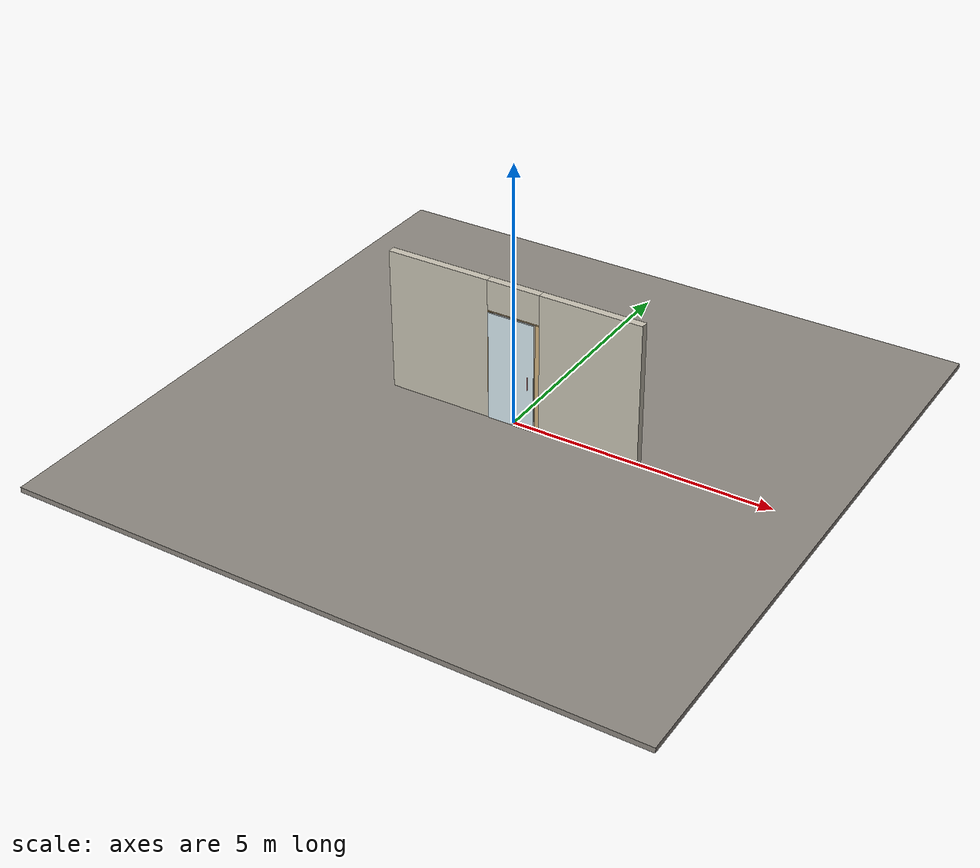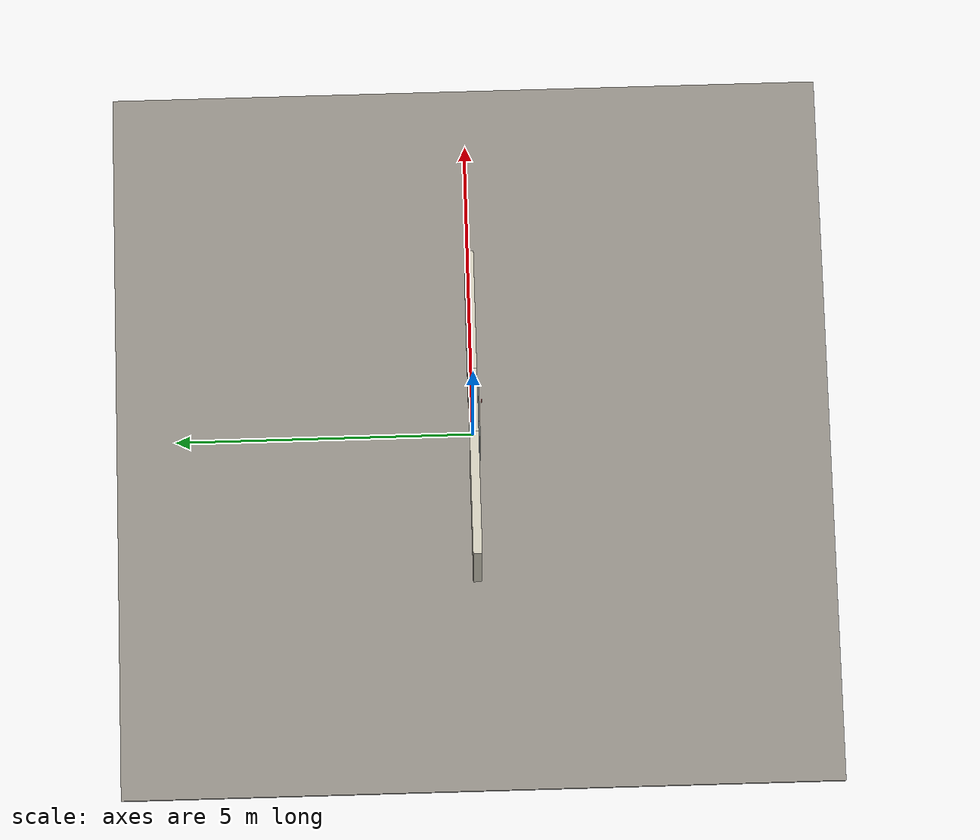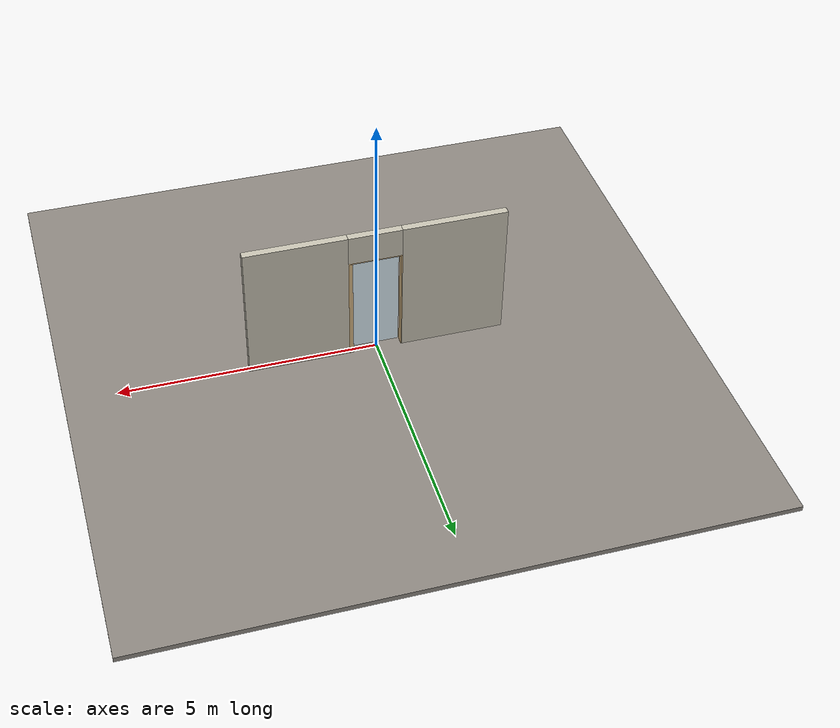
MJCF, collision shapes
<?xml version="1.0" ?>
<mujoco model="db0875_sliding_single_minimal">
  <compiler angle="radian" meshdir="../../hardware" texturedir="../../textures" autolimits="true" inertiafromgeom="false"/>
  <option timestep="0.002" integrator="implicitfast" cone="elliptic" impratio="10" noslip_iterations="3">
    <flag multiccd="enable"/>
  </option>
  <size memory="16M"/>
  <default>
    <geom condim="4" solref="0.005 1" solimp="0.95 0.99 0.001"/>
    <joint solreflimit="0.005 1" solimplimit="0.95 0.99 0.001"/>
    <tendon solreflimit="0.005 1"/>
    <equality solref="0.002 1"/>
  </default>
  <visual>
    <headlight ambient="0.4 0.4 0.4" diffuse="0.7 0.7 0.7" specular="0.2 0.2 0.2"/>
    <quality shadowsize="4096"/>
    <map znear="0.01" zfar="60"/>
  </visual>
  <asset>
    <mesh name="pull_2b47e55ff8" file="pull_2b47e55ff8.obj"/>
    <material name="mat_floor" rgba="0.55 0.53 0.5 1" specular="0.2" shininess="0.15" reflectance="0"/>
    <material name="mat_wall" rgba="0.78 0.76 0.7 1" specular="0.2" shininess="0.1" reflectance="0"/>
    <material name="mat_frame" rgba="0.82 0.7 0.5 1" specular="0.2" shininess="0.45" reflectance="0"/>
    <material name="mat_track" rgba="0.05 0.05 0.05 1" specular="0.38" shininess="0.3" reflectance="0.12"/>
    <material name="mat_leaf" rgba="0.85 0.92 0.95 0.25" specular="0.2" shininess="0.95" reflectance="0.1"/>
    <material name="mat_glass_leaf" rgba="0.85 0.92 0.95 0.25" specular="0.2" shininess="0.95" reflectance="0.1"/>
    <material name="mat_patch" rgba="0.75 0.76 0.77 1" specular="0.8" shininess="0.65" reflectance="0.4"/>
    <material name="mat_roller" rgba="0.65 0.66 0.68 1" specular="0.74" shininess="0.5" reflectance="0.36"/>
    <material name="mat_op_black_matte_metal" rgba="0.05 0.05 0.05 1" specular="0.38" shininess="0.3" reflectance="0.12"/>
    <material name="mat_teardrop" rgba="0.05 0.05 0.05 1" specular="0.38" shininess="0.3" reflectance="0.12"/>
    <material name="mat_hook" rgba="0.75 0.76 0.77 1" specular="0.8" shininess="0.65" reflectance="0.4"/>
    <texture name="skybox" type="skybox" builtin="gradient" rgb1="0.6 0.7 0.85" rgb2="0.9 0.92 0.95" width="256" height="256"/>
  </asset>
  <worldbody>
    <light name="sun" pos="1.5 -2.5 4" dir="-0.3 0.5 -0.8" directional="true" diffuse="0.8 0.8 0.8" specular="0.3 0.3 0.3" castshadow="true"/>
    <light name="fill" pos="-1.5 2.5 3" dir="0.3 -0.5 -0.7" directional="true" diffuse="0.35 0.35 0.4" castshadow="false"/>
    <camera name="robot_view" pos="0 -2.644375 1.817425" xyaxes="1 0 0 0 0.26963 0.962964" fovy="52"/>
    <camera name="far_view" pos="0 2.644375 1.817425" xyaxes="-1 0 0 0 -0.26963 0.962964" fovy="52"/>
    <camera name="iso" pos="2.009725 -2.221275 2.240525" xyaxes="0.741536 0.670913 0 -0.242917 0.268487 0.932151" fovy="46"/>
    <camera name="detail_handle" pos="0.547 -0.9475 1.28" xyaxes="0.97561 0.219512 0 -0.070934 0.315262 0.94635" fovy="38"/>
    <geom name="floor" type="box" size="6 6 0.05" pos="0 0 -0.05" material="mat_floor" group="0" contype="1" conaffinity="1" friction="0.8 0.005 0.0001" density="2400"/>
    <geom name="wall_left" type="box" size="1.007 0.0725 1.377" pos="-1.493 0 1.377" material="mat_wall" group="0" contype="1" conaffinity="1" friction="0.6 0.005 0.0001" density="800"/>
    <geom name="wall_right" type="box" size="0.977 0.0725 1.377" pos="1.523 0 1.377" material="mat_wall" group="0" contype="1" conaffinity="1" friction="0.6 0.005 0.0001" density="800"/>
    <geom name="wall_header" type="box" size="0.516 0.0725 0.2905" pos="0.03 0 2.4635" material="mat_wall" group="0" contype="1" conaffinity="1" friction="0.6 0.005 0.0001" density="800"/>
    <geom name="jamb_l" type="box" size="0.0095 0.0725 1.077" pos="-0.4765 0 1.077" material="mat_frame" group="0" contype="1" conaffinity="1" friction="0.6 0.005 0.0001" density="300"/>
    <geom name="jamb_head" type="box" size="0.486 0.0725 0.0095" pos="0 0 2.1635" material="mat_frame" group="0" contype="1" conaffinity="1" friction="0.6 0.005 0.0001" density="300"/>
    <geom name="jamb_latch_0" type="box" size="0.0395 0.0725 1.077" pos="0.5065 0 1.077" material="mat_frame" group="0" contype="1" conaffinity="1" friction="0.6 0.005 0.0001" density="300"/>
    <site name="approach_point" pos="0 -1.5 0" quat="1 0 0 0" size="0.05" rgba="0.2 0.9 0.2 0.5" group="4"/>
    <site name="goal_point" pos="0 1.5 0" quat="1 0 0 0" size="0.05" rgba="0.2 0.9 0.2 0.5" group="4"/>
    <site name="door_plane_center" pos="0 0 1.077" quat="1 0 0 0" size="0.02" rgba="0.2 0.9 0.2 0.5" group="4"/>
    <body name="leaf" pos="0 -0.0975 0">
      <inertial pos="0.061846 -0.0071 1.065687" mass="31.129941" quat="0.497425 0.510867 0.488326 -0.503111" diaginertia="2.396565316 9.914425016 12.297045294"/>
      <joint name="leaf_slide" type="slide" axis="-1 0 0" limited="true" range="0 0.914" damping="3.562619" frictionloss="36.777736" armature="0.5"/>
      <geom name="leaf_glass" type="box" size="0.457 0.005 1.067" pos="0 0 1.079" material="mat_glass_leaf" group="0" contype="1" conaffinity="1" friction="0.4 0.005 0.0001" density="1"/>
      <geom name="leaf_pull_n" type="mesh" mesh="pull_2b47e55ff8" pos="0.367 -0.005 1" quat="0.707107 0.707107 0 0" material="mat_op_black_matte_metal" group="1" contype="0" conaffinity="0" density="3000"/>
      <geom name="leaf_pull_col_n" type="capsule" size="0.006 0.13" pos="0.367 -0.05 1" material="mat_op_black_matte_metal" group="3" contype="1" conaffinity="1" rgba="0.8 0.3 0.3 0.25" friction="0.7 0.01 0.0001" density="3000"/>
      <site name="leaf_pull_grip_n" pos="0.367 -0.05 1" quat="1 0 0 0" size="0.012" rgba="0.2 0.9 0.2 0.5" group="4"/>
      <site name="leaf_edge_mid" pos="0.457 0 1.079" quat="1 0 0 0" size="0.02" rgba="0.2 0.9 0.2 0.5" group="4"/>
    </body>
  </worldbody>
  <sensor>
    <jointpos name="leaf_slide_pos" joint="leaf_slide"/>
    <jointvel name="leaf_slide_vel" joint="leaf_slide"/>
  </sensor>
</mujoco>
